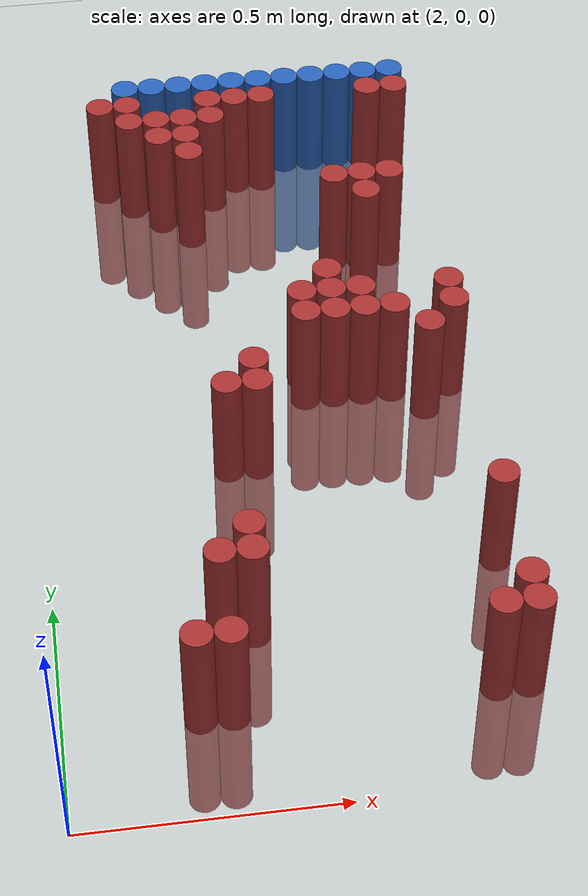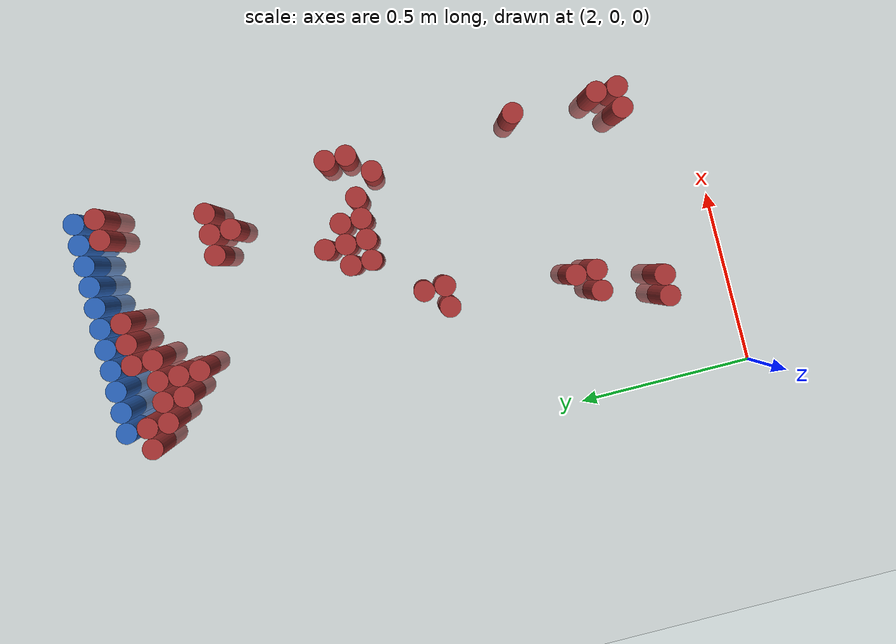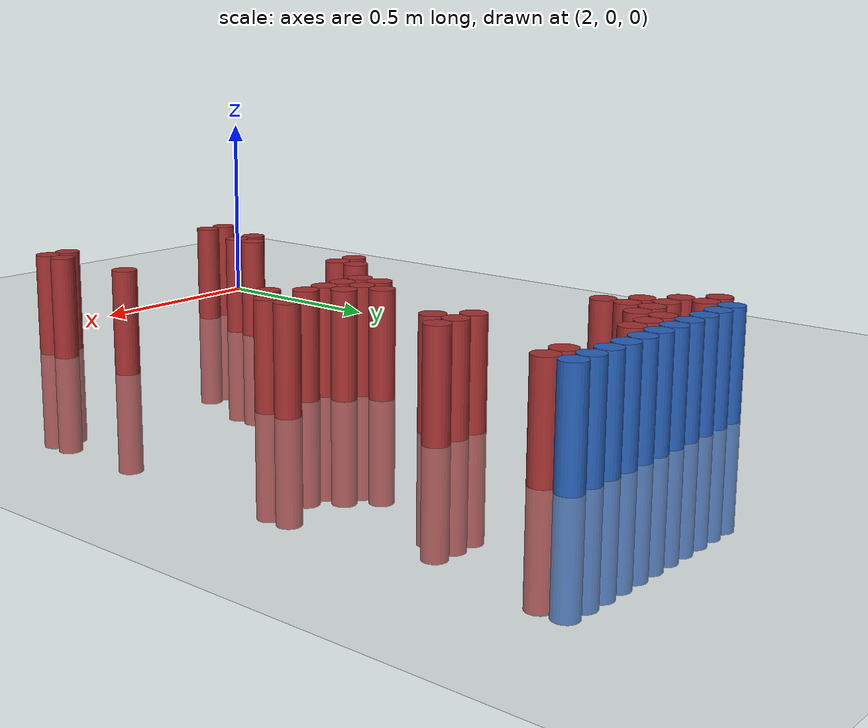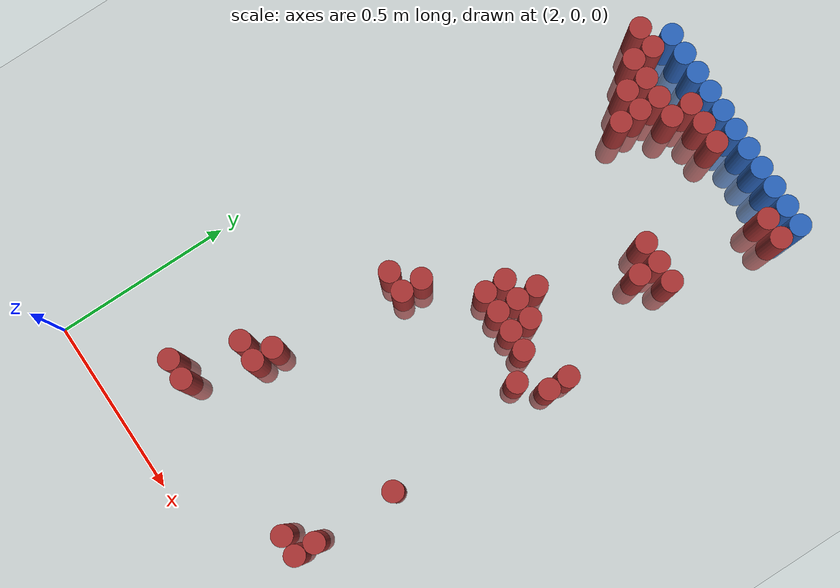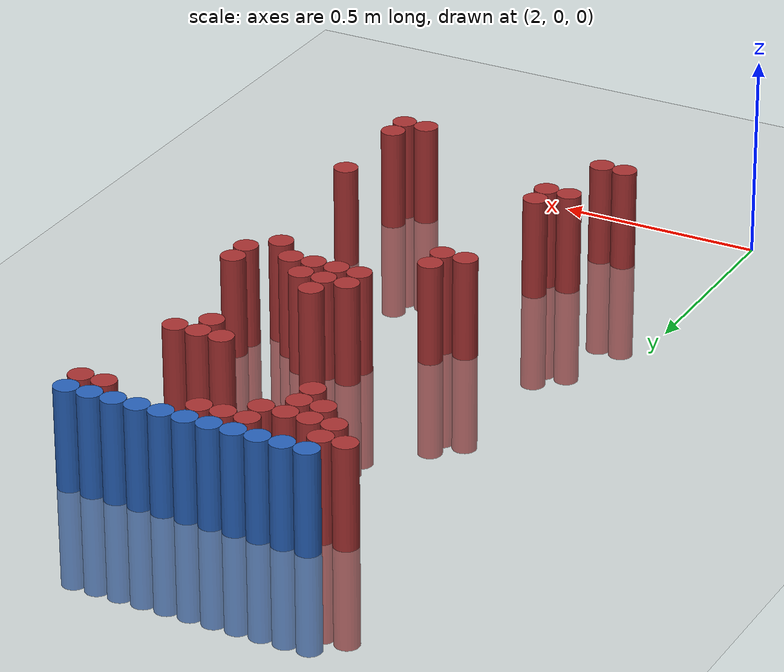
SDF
<sdf version="1.6">
 <world name="default">
  <model name="ground_plane">
   <static>1</static>
   <link name="link">
    <collision name="collision">
     <geometry><plane><normal>0 0 1</normal><size>100 100</size></plane></geometry>
     <surface><friction><ode><mu>100</mu><mu2>50</mu2></ode></friction></surface>
    </collision>
    <visual name="visual">
     <cast_shadows>0</cast_shadows>
     <geometry><plane><normal>0 0 1</normal><size>100 100</size></plane></geometry>
     <material>
      <script><uri>file://media/materials/scripts/gazebo.material</uri><name>Gazebo/Grey</name></script>
     </material>
    </visual>
   </link>
  </model>
  <model name="unit_cylinder_98">
   <static>1</static>
   <pose>2.250000 1.770000 0.000000 0.000000 0.000000 0.000000</pose>
   <link name="link">
    <inertial>
     <mass>1</mass>
     <inertia><ixx>0.145833</ixx><ixy>0</ixy><ixz>0</ixz><iyy>0.145833</iyy><iyz>0</iyz><izz>0.125</izz></inertia>
    </inertial>
    <collision name="collision">
     <geometry><cylinder><radius>0.030000</radius><length>0.5</length></cylinder></geometry>
    </collision>
    <visual name="visual">
     <geometry><cylinder><radius>0.030000</radius><length>0.5</length></cylinder></geometry>
     <material>
      <ambient>0.152000 0.379000 0.720000 1</ambient>
      <diffuse>0.152000 0.379000 0.720000 1</diffuse>
     </material>
     <material>
      <script><name>Gazebo/Grey</name><uri>file://media/materials/scripts/gazebo.material</uri></script>
     </material>
    </visual>
   </link>
  </model>
  <model name="unit_cylinder_99">
   <static>1</static>
   <pose>2.310000 1.770000 0.000000 0.000000 0.000000 0.000000</pose>
   <link name="link">
    <inertial>
     <mass>1</mass>
     <inertia><ixx>0.145833</ixx><ixy>0</ixy><ixz>0</ixz><iyy>0.145833</iyy><iyz>0</iyz><izz>0.125</izz></inertia>
    </inertial>
    <collision name="collision">
     <geometry><cylinder><radius>0.030000</radius><length>0.5</length></cylinder></geometry>
    </collision>
    <visual name="visual">
     <geometry><cylinder><radius>0.030000</radius><length>0.5</length></cylinder></geometry>
     <material>
      <ambient>0.152000 0.379000 0.720000 1</ambient>
      <diffuse>0.152000 0.379000 0.720000 1</diffuse>
     </material>
     <material>
      <script><name>Gazebo/Grey</name><uri>file://media/materials/scripts/gazebo.material</uri></script>
     </material>
    </visual>
   </link>
  </model>
  <model name="unit_cylinder_100">
   <static>1</static>
   <pose>2.370000 1.770000 0.000000 0.000000 0.000000 0.000000</pose>
   <link name="link">
    <inertial>
     <mass>1</mass>
     <inertia><ixx>0.145833</ixx><ixy>0</ixy><ixz>0</ixz><iyy>0.145833</iyy><iyz>0</iyz><izz>0.125</izz></inertia>
    </inertial>
    <collision name="collision">
     <geometry><cylinder><radius>0.030000</radius><length>0.5</length></cylinder></geometry>
    </collision>
    <visual name="visual">
     <geometry><cylinder><radius>0.030000</radius><length>0.5</length></cylinder></geometry>
     <material>
      <ambient>0.152000 0.379000 0.720000 1</ambient>
      <diffuse>0.152000 0.379000 0.720000 1</diffuse>
     </material>
     <material>
      <script><name>Gazebo/Grey</name><uri>file://media/materials/scripts/gazebo.material</uri></script>
     </material>
    </visual>
   </link>
  </model>
  <model name="unit_cylinder_101">
   <static>1</static>
   <pose>2.430000 1.770000 0.000000 0.000000 0.000000 0.000000</pose>
   <link name="link">
    <inertial>
     <mass>1</mass>
     <inertia><ixx>0.145833</ixx><ixy>0</ixy><ixz>0</ixz><iyy>0.145833</iyy><iyz>0</iyz><izz>0.125</izz></inertia>
    </inertial>
    <collision name="collision">
     <geometry><cylinder><radius>0.030000</radius><length>0.5</length></cylinder></geometry>
    </collision>
    <visual name="visual">
     <geometry><cylinder><radius>0.030000</radius><length>0.5</length></cylinder></geometry>
     <material>
      <ambient>0.152000 0.379000 0.720000 1</ambient>
      <diffuse>0.152000 0.379000 0.720000 1</diffuse>
     </material>
     <material>
      <script><name>Gazebo/Grey</name><uri>file://media/materials/scripts/gazebo.material</uri></script>
     </material>
    </visual>
   </link>
  </model>
  <model name="unit_cylinder_102">
   <static>1</static>
   <pose>2.490000 1.770000 0.000000 0.000000 0.000000 0.000000</pose>
   <link name="link">
    <inertial>
     <mass>1</mass>
     <inertia><ixx>0.145833</ixx><ixy>0</ixy><ixz>0</ixz><iyy>0.145833</iyy><iyz>0</iyz><izz>0.125</izz></inertia>
    </inertial>
    <collision name="collision">
     <geometry><cylinder><radius>0.030000</radius><length>0.5</length></cylinder></geometry>
    </collision>
    <visual name="visual">
     <geometry><cylinder><radius>0.030000</radius><length>0.5</length></cylinder></geometry>
     <material>
      <ambient>0.152000 0.379000 0.720000 1</ambient>
      <diffuse>0.152000 0.379000 0.720000 1</diffuse>
     </material>
     <material>
      <script><name>Gazebo/Grey</name><uri>file://media/materials/scripts/gazebo.material</uri></script>
     </material>
    </visual>
   </link>
  </model>
  <model name="unit_cylinder_103">
   <static>1</static>
   <pose>2.550000 1.770000 0.000000 0.000000 0.000000 0.000000</pose>
   <link name="link">
    <inertial>
     <mass>1</mass>
     <inertia><ixx>0.145833</ixx><ixy>0</ixy><ixz>0</ixz><iyy>0.145833</iyy><iyz>0</iyz><izz>0.125</izz></inertia>
    </inertial>
    <collision name="collision">
     <geometry><cylinder><radius>0.030000</radius><length>0.5</length></cylinder></geometry>
    </collision>
    <visual name="visual">
     <geometry><cylinder><radius>0.030000</radius><length>0.5</length></cylinder></geometry>
     <material>
      <ambient>0.152000 0.379000 0.720000 1</ambient>
      <diffuse>0.152000 0.379000 0.720000 1</diffuse>
     </material>
     <material>
      <script><name>Gazebo/Grey</name><uri>file://media/materials/scripts/gazebo.material</uri></script>
     </material>
    </visual>
   </link>
  </model>
  <model name="unit_cylinder_104">
   <static>1</static>
   <pose>2.610000 1.770000 0.000000 0.000000 0.000000 0.000000</pose>
   <link name="link">
    <inertial>
     <mass>1</mass>
     <inertia><ixx>0.145833</ixx><ixy>0</ixy><ixz>0</ixz><iyy>0.145833</iyy><iyz>0</iyz><izz>0.125</izz></inertia>
    </inertial>
    <collision name="collision">
     <geometry><cylinder><radius>0.030000</radius><length>0.5</length></cylinder></geometry>
    </collision>
    <visual name="visual">
     <geometry><cylinder><radius>0.030000</radius><length>0.5</length></cylinder></geometry>
     <material>
      <ambient>0.152000 0.379000 0.720000 1</ambient>
      <diffuse>0.152000 0.379000 0.720000 1</diffuse>
     </material>
     <material>
      <script><name>Gazebo/Grey</name><uri>file://media/materials/scripts/gazebo.material</uri></script>
     </material>
    </visual>
   </link>
  </model>
  <model name="unit_cylinder_105">
   <static>1</static>
   <pose>2.670000 1.770000 0.000000 0.000000 0.000000 0.000000</pose>
   <link name="link">
    <inertial>
     <mass>1</mass>
     <inertia><ixx>0.145833</ixx><ixy>0</ixy><ixz>0</ixz><iyy>0.145833</iyy><iyz>0</iyz><izz>0.125</izz></inertia>
    </inertial>
    <collision name="collision">
     <geometry><cylinder><radius>0.030000</radius><length>0.5</length></cylinder></geometry>
    </collision>
    <visual name="visual">
     <geometry><cylinder><radius>0.030000</radius><length>0.5</length></cylinder></geometry>
     <material>
      <ambient>0.152000 0.379000 0.720000 1</ambient>
      <diffuse>0.152000 0.379000 0.720000 1</diffuse>
     </material>
     <material>
      <script><name>Gazebo/Grey</name><uri>file://media/materials/scripts/gazebo.material</uri></script>
     </material>
    </visual>
   </link>
  </model>
  <model name="unit_cylinder_106">
   <static>1</static>
   <pose>2.730000 1.770000 0.000000 0.000000 0.000000 0.000000</pose>
   <link name="link">
    <inertial>
     <mass>1</mass>
     <inertia><ixx>0.145833</ixx><ixy>0</ixy><ixz>0</ixz><iyy>0.145833</iyy><iyz>0</iyz><izz>0.125</izz></inertia>
    </inertial>
    <collision name="collision">
     <geometry><cylinder><radius>0.030000</radius><length>0.5</length></cylinder></geometry>
    </collision>
    <visual name="visual">
     <geometry><cylinder><radius>0.030000</radius><length>0.5</length></cylinder></geometry>
     <material>
      <ambient>0.152000 0.379000 0.720000 1</ambient>
      <diffuse>0.152000 0.379000 0.720000 1</diffuse>
     </material>
     <material>
      <script><name>Gazebo/Grey</name><uri>file://media/materials/scripts/gazebo.material</uri></script>
     </material>
    </visual>
   </link>
  </model>
  <model name="unit_cylinder_107">
   <static>1</static>
   <pose>2.790000 1.770000 0.000000 0.000000 0.000000 0.000000</pose>
   <link name="link">
    <inertial>
     <mass>1</mass>
     <inertia><ixx>0.145833</ixx><ixy>0</ixy><ixz>0</ixz><iyy>0.145833</iyy><iyz>0</iyz><izz>0.125</izz></inertia>
    </inertial>
    <collision name="collision">
     <geometry><cylinder><radius>0.030000</radius><length>0.5</length></cylinder></geometry>
    </collision>
    <visual name="visual">
     <geometry><cylinder><radius>0.030000</radius><length>0.5</length></cylinder></geometry>
     <material>
      <ambient>0.152000 0.379000 0.720000 1</ambient>
      <diffuse>0.152000 0.379000 0.720000 1</diffuse>
     </material>
     <material>
      <script><name>Gazebo/Grey</name><uri>file://media/materials/scripts/gazebo.material</uri></script>
     </material>
    </visual>
   </link>
  </model>
  <model name="unit_cylinder_108">
   <static>1</static>
   <pose>2.850000 1.770000 0.000000 0.000000 0.000000 0.000000</pose>
   <link name="link">
    <inertial>
     <mass>1</mass>
     <inertia><ixx>0.145833</ixx><ixy>0</ixy><ixz>0</ixz><iyy>0.145833</iyy><iyz>0</iyz><izz>0.125</izz></inertia>
    </inertial>
    <collision name="collision">
     <geometry><cylinder><radius>0.030000</radius><length>0.5</length></cylinder></geometry>
    </collision>
    <visual name="visual">
     <geometry><cylinder><radius>0.030000</radius><length>0.5</length></cylinder></geometry>
     <material>
      <ambient>0.152000 0.379000 0.720000 1</ambient>
      <diffuse>0.152000 0.379000 0.720000 1</diffuse>
     </material>
     <material>
      <script><name>Gazebo/Grey</name><uri>file://media/materials/scripts/gazebo.material</uri></script>
     </material>
    </visual>
   </link>
  </model>
  <model name="unit_cylinder_127">
   <static>1</static>
   <pose>2.190000 1.710000 0.000000 0.000000 0.000000 0.000000</pose>
   <link name="link">
    <inertial>
     <mass>1</mass>
     <inertia><ixx>0.145833</ixx><ixy>0</ixy><ixz>0</ixz><iyy>0.145833</iyy><iyz>0</iyz><izz>0.125</izz></inertia>
    </inertial>
    <collision name="collision">
     <geometry><cylinder><radius>0.030000</radius><length>0.5</length></cylinder></geometry>
    </collision>
    <visual name="visual">
     <geometry><cylinder><radius>0.030000</radius><length>0.5</length></cylinder></geometry>
     <material>
      <ambient>0.648000 0.192000 0.192000 1</ambient>
      <diffuse>0.648000 0.192000 0.192000 1</diffuse>
     </material>
     <material>
      <script><name>Gazebo/Grey</name><uri>file://media/materials/scripts/gazebo.material</uri></script>
     </material>
    </visual>
   </link>
  </model>
  <model name="unit_cylinder_128">
   <static>1</static>
   <pose>2.250000 1.710000 0.000000 0.000000 0.000000 0.000000</pose>
   <link name="link">
    <inertial>
     <mass>1</mass>
     <inertia><ixx>0.145833</ixx><ixy>0</ixy><ixz>0</ixz><iyy>0.145833</iyy><iyz>0</iyz><izz>0.125</izz></inertia>
    </inertial>
    <collision name="collision">
     <geometry><cylinder><radius>0.030000</radius><length>0.5</length></cylinder></geometry>
    </collision>
    <visual name="visual">
     <geometry><cylinder><radius>0.030000</radius><length>0.5</length></cylinder></geometry>
     <material>
      <ambient>0.648000 0.192000 0.192000 1</ambient>
      <diffuse>0.648000 0.192000 0.192000 1</diffuse>
     </material>
     <material>
      <script><name>Gazebo/Grey</name><uri>file://media/materials/scripts/gazebo.material</uri></script>
     </material>
    </visual>
   </link>
  </model>
  <model name="unit_cylinder_129">
   <static>1</static>
   <pose>2.430000 1.710000 0.000000 0.000000 0.000000 0.000000</pose>
   <link name="link">
    <inertial>
     <mass>1</mass>
     <inertia><ixx>0.145833</ixx><ixy>0</ixy><ixz>0</ixz><iyy>0.145833</iyy><iyz>0</iyz><izz>0.125</izz></inertia>
    </inertial>
    <collision name="collision">
     <geometry><cylinder><radius>0.030000</radius><length>0.5</length></cylinder></geometry>
    </collision>
    <visual name="visual">
     <geometry><cylinder><radius>0.030000</radius><length>0.5</length></cylinder></geometry>
     <material>
      <ambient>0.648000 0.192000 0.192000 1</ambient>
      <diffuse>0.648000 0.192000 0.192000 1</diffuse>
     </material>
     <material>
      <script><name>Gazebo/Grey</name><uri>file://media/materials/scripts/gazebo.material</uri></script>
     </material>
    </visual>
   </link>
  </model>
  <model name="unit_cylinder_130">
   <static>1</static>
   <pose>2.490000 1.710000 0.000000 0.000000 0.000000 0.000000</pose>
   <link name="link">
    <inertial>
     <mass>1</mass>
     <inertia><ixx>0.145833</ixx><ixy>0</ixy><ixz>0</ixz><iyy>0.145833</iyy><iyz>0</iyz><izz>0.125</izz></inertia>
    </inertial>
    <collision name="collision">
     <geometry><cylinder><radius>0.030000</radius><length>0.5</length></cylinder></geometry>
    </collision>
    <visual name="visual">
     <geometry><cylinder><radius>0.030000</radius><length>0.5</length></cylinder></geometry>
     <material>
      <ambient>0.648000 0.192000 0.192000 1</ambient>
      <diffuse>0.648000 0.192000 0.192000 1</diffuse>
     </material>
     <material>
      <script><name>Gazebo/Grey</name><uri>file://media/materials/scripts/gazebo.material</uri></script>
     </material>
    </visual>
   </link>
  </model>
  <model name="unit_cylinder_131">
   <static>1</static>
   <pose>2.550000 1.710000 0.000000 0.000000 0.000000 0.000000</pose>
   <link name="link">
    <inertial>
     <mass>1</mass>
     <inertia><ixx>0.145833</ixx><ixy>0</ixy><ixz>0</ixz><iyy>0.145833</iyy><iyz>0</iyz><izz>0.125</izz></inertia>
    </inertial>
    <collision name="collision">
     <geometry><cylinder><radius>0.030000</radius><length>0.5</length></cylinder></geometry>
    </collision>
    <visual name="visual">
     <geometry><cylinder><radius>0.030000</radius><length>0.5</length></cylinder></geometry>
     <material>
      <ambient>0.648000 0.192000 0.192000 1</ambient>
      <diffuse>0.648000 0.192000 0.192000 1</diffuse>
     </material>
     <material>
      <script><name>Gazebo/Grey</name><uri>file://media/materials/scripts/gazebo.material</uri></script>
     </material>
    </visual>
   </link>
  </model>
  <model name="unit_cylinder_132">
   <static>1</static>
   <pose>2.790000 1.710000 0.000000 0.000000 0.000000 0.000000</pose>
   <link name="link">
    <inertial>
     <mass>1</mass>
     <inertia><ixx>0.145833</ixx><ixy>0</ixy><ixz>0</ixz><iyy>0.145833</iyy><iyz>0</iyz><izz>0.125</izz></inertia>
    </inertial>
    <collision name="collision">
     <geometry><cylinder><radius>0.030000</radius><length>0.5</length></cylinder></geometry>
    </collision>
    <visual name="visual">
     <geometry><cylinder><radius>0.030000</radius><length>0.5</length></cylinder></geometry>
     <material>
      <ambient>0.648000 0.192000 0.192000 1</ambient>
      <diffuse>0.648000 0.192000 0.192000 1</diffuse>
     </material>
     <material>
      <script><name>Gazebo/Grey</name><uri>file://media/materials/scripts/gazebo.material</uri></script>
     </material>
    </visual>
   </link>
  </model>
  <model name="unit_cylinder_133">
   <static>1</static>
   <pose>2.850000 1.710000 0.000000 0.000000 0.000000 0.000000</pose>
   <link name="link">
    <inertial>
     <mass>1</mass>
     <inertia><ixx>0.145833</ixx><ixy>0</ixy><ixz>0</ixz><iyy>0.145833</iyy><iyz>0</iyz><izz>0.125</izz></inertia>
    </inertial>
    <collision name="collision">
     <geometry><cylinder><radius>0.030000</radius><length>0.5</length></cylinder></geometry>
    </collision>
    <visual name="visual">
     <geometry><cylinder><radius>0.030000</radius><length>0.5</length></cylinder></geometry>
     <material>
      <ambient>0.648000 0.192000 0.192000 1</ambient>
      <diffuse>0.648000 0.192000 0.192000 1</diffuse>
     </material>
     <material>
      <script><name>Gazebo/Grey</name><uri>file://media/materials/scripts/gazebo.material</uri></script>
     </material>
    </visual>
   </link>
  </model>
  <model name="unit_cylinder_136">
   <static>1</static>
   <pose>2.250000 1.650000 0.000000 0.000000 0.000000 0.000000</pose>
   <link name="link">
    <inertial>
     <mass>1</mass>
     <inertia><ixx>0.145833</ixx><ixy>0</ixy><ixz>0</ixz><iyy>0.145833</iyy><iyz>0</iyz><izz>0.125</izz></inertia>
    </inertial>
    <collision name="collision">
     <geometry><cylinder><radius>0.030000</radius><length>0.5</length></cylinder></geometry>
    </collision>
    <visual name="visual">
     <geometry><cylinder><radius>0.030000</radius><length>0.5</length></cylinder></geometry>
     <material>
      <ambient>0.648000 0.192000 0.192000 1</ambient>
      <diffuse>0.648000 0.192000 0.192000 1</diffuse>
     </material>
     <material>
      <script><name>Gazebo/Grey</name><uri>file://media/materials/scripts/gazebo.material</uri></script>
     </material>
    </visual>
   </link>
  </model>
  <model name="unit_cylinder_137">
   <static>1</static>
   <pose>2.310000 1.650000 0.000000 0.000000 0.000000 0.000000</pose>
   <link name="link">
    <inertial>
     <mass>1</mass>
     <inertia><ixx>0.145833</ixx><ixy>0</ixy><ixz>0</ixz><iyy>0.145833</iyy><iyz>0</iyz><izz>0.125</izz></inertia>
    </inertial>
    <collision name="collision">
     <geometry><cylinder><radius>0.030000</radius><length>0.5</length></cylinder></geometry>
    </collision>
    <visual name="visual">
     <geometry><cylinder><radius>0.030000</radius><length>0.5</length></cylinder></geometry>
     <material>
      <ambient>0.648000 0.192000 0.192000 1</ambient>
      <diffuse>0.648000 0.192000 0.192000 1</diffuse>
     </material>
     <material>
      <script><name>Gazebo/Grey</name><uri>file://media/materials/scripts/gazebo.material</uri></script>
     </material>
    </visual>
   </link>
  </model>
  <model name="unit_cylinder_138">
   <static>1</static>
   <pose>2.370000 1.650000 0.000000 0.000000 0.000000 0.000000</pose>
   <link name="link">
    <inertial>
     <mass>1</mass>
     <inertia><ixx>0.145833</ixx><ixy>0</ixy><ixz>0</ixz><iyy>0.145833</iyy><iyz>0</iyz><izz>0.125</izz></inertia>
    </inertial>
    <collision name="collision">
     <geometry><cylinder><radius>0.030000</radius><length>0.5</length></cylinder></geometry>
    </collision>
    <visual name="visual">
     <geometry><cylinder><radius>0.030000</radius><length>0.5</length></cylinder></geometry>
     <material>
      <ambient>0.648000 0.192000 0.192000 1</ambient>
      <diffuse>0.648000 0.192000 0.192000 1</diffuse>
     </material>
     <material>
      <script><name>Gazebo/Grey</name><uri>file://media/materials/scripts/gazebo.material</uri></script>
     </material>
    </visual>
   </link>
  </model>
  <model name="unit_cylinder_139">
   <static>1</static>
   <pose>2.430000 1.650000 0.000000 0.000000 0.000000 0.000000</pose>
   <link name="link">
    <inertial>
     <mass>1</mass>
     <inertia><ixx>0.145833</ixx><ixy>0</ixy><ixz>0</ixz><iyy>0.145833</iyy><iyz>0</iyz><izz>0.125</izz></inertia>
    </inertial>
    <collision name="collision">
     <geometry><cylinder><radius>0.030000</radius><length>0.5</length></cylinder></geometry>
    </collision>
    <visual name="visual">
     <geometry><cylinder><radius>0.030000</radius><length>0.5</length></cylinder></geometry>
     <material>
      <ambient>0.648000 0.192000 0.192000 1</ambient>
      <diffuse>0.648000 0.192000 0.192000 1</diffuse>
     </material>
     <material>
      <script><name>Gazebo/Grey</name><uri>file://media/materials/scripts/gazebo.material</uri></script>
     </material>
    </visual>
   </link>
  </model>
  <model name="unit_cylinder_140">
   <static>1</static>
   <pose>2.310000 1.590000 0.000000 0.000000 0.000000 0.000000</pose>
   <link name="link">
    <inertial>
     <mass>1</mass>
     <inertia><ixx>0.145833</ixx><ixy>0</ixy><ixz>0</ixz><iyy>0.145833</iyy><iyz>0</iyz><izz>0.125</izz></inertia>
    </inertial>
    <collision name="collision">
     <geometry><cylinder><radius>0.030000</radius><length>0.5</length></cylinder></geometry>
    </collision>
    <visual name="visual">
     <geometry><cylinder><radius>0.030000</radius><length>0.5</length></cylinder></geometry>
     <material>
      <ambient>0.648000 0.192000 0.192000 1</ambient>
      <diffuse>0.648000 0.192000 0.192000 1</diffuse>
     </material>
     <material>
      <script><name>Gazebo/Grey</name><uri>file://media/materials/scripts/gazebo.material</uri></script>
     </material>
    </visual>
   </link>
  </model>
  <model name="unit_cylinder_141">
   <static>1</static>
   <pose>2.370000 1.590000 0.000000 0.000000 0.000000 0.000000</pose>
   <link name="link">
    <inertial>
     <mass>1</mass>
     <inertia><ixx>0.145833</ixx><ixy>0</ixy><ixz>0</ixz><iyy>0.145833</iyy><iyz>0</iyz><izz>0.125</izz></inertia>
    </inertial>
    <collision name="collision">
     <geometry><cylinder><radius>0.030000</radius><length>0.5</length></cylinder></geometry>
    </collision>
    <visual name="visual">
     <geometry><cylinder><radius>0.030000</radius><length>0.5</length></cylinder></geometry>
     <material>
      <ambient>0.648000 0.192000 0.192000 1</ambient>
      <diffuse>0.648000 0.192000 0.192000 1</diffuse>
     </material>
     <material>
      <script><name>Gazebo/Grey</name><uri>file://media/materials/scripts/gazebo.material</uri></script>
     </material>
    </visual>
   </link>
  </model>
  <model name="unit_cylinder_144">
   <static>1</static>
   <pose>2.370000 1.530000 0.000000 0.000000 0.000000 0.000000</pose>
   <link name="link">
    <inertial>
     <mass>1</mass>
     <inertia><ixx>0.145833</ixx><ixy>0</ixy><ixz>0</ixz><iyy>0.145833</iyy><iyz>0</iyz><izz>0.125</izz></inertia>
    </inertial>
    <collision name="collision">
     <geometry><cylinder><radius>0.030000</radius><length>0.5</length></cylinder></geometry>
    </collision>
    <visual name="visual">
     <geometry><cylinder><radius>0.030000</radius><length>0.5</length></cylinder></geometry>
     <material>
      <ambient>0.648000 0.192000 0.192000 1</ambient>
      <diffuse>0.648000 0.192000 0.192000 1</diffuse>
     </material>
     <material>
      <script><name>Gazebo/Grey</name><uri>file://media/materials/scripts/gazebo.material</uri></script>
     </material>
    </visual>
   </link>
  </model>
  <model name="unit_cylinder_149">
   <static>1</static>
   <pose>2.670000 1.410000 0.000000 0.000000 0.000000 0.000000</pose>
   <link name="link">
    <inertial>
     <mass>1</mass>
     <inertia><ixx>0.145833</ixx><ixy>0</ixy><ixz>0</ixz><iyy>0.145833</iyy><iyz>0</iyz><izz>0.125</izz></inertia>
    </inertial>
    <collision name="collision">
     <geometry><cylinder><radius>0.030000</radius><length>0.5</length></cylinder></geometry>
    </collision>
    <visual name="visual">
     <geometry><cylinder><radius>0.030000</radius><length>0.5</length></cylinder></geometry>
     <material>
      <ambient>0.648000 0.192000 0.192000 1</ambient>
      <diffuse>0.648000 0.192000 0.192000 1</diffuse>
     </material>
     <material>
      <script><name>Gazebo/Grey</name><uri>file://media/materials/scripts/gazebo.material</uri></script>
     </material>
    </visual>
   </link>
  </model>
  <model name="unit_cylinder_150">
   <static>1</static>
   <pose>2.730000 1.410000 0.000000 0.000000 0.000000 0.000000</pose>
   <link name="link">
    <inertial>
     <mass>1</mass>
     <inertia><ixx>0.145833</ixx><ixy>0</ixy><ixz>0</ixz><iyy>0.145833</iyy><iyz>0</iyz><izz>0.125</izz></inertia>
    </inertial>
    <collision name="collision">
     <geometry><cylinder><radius>0.030000</radius><length>0.5</length></cylinder></geometry>
    </collision>
    <visual name="visual">
     <geometry><cylinder><radius>0.030000</radius><length>0.5</length></cylinder></geometry>
     <material>
      <ambient>0.648000 0.192000 0.192000 1</ambient>
      <diffuse>0.648000 0.192000 0.192000 1</diffuse>
     </material>
     <material>
      <script><name>Gazebo/Grey</name><uri>file://media/materials/scripts/gazebo.material</uri></script>
     </material>
    </visual>
   </link>
  </model>
  <model name="unit_cylinder_151">
   <static>1</static>
   <pose>2.790000 1.410000 0.000000 0.000000 0.000000 0.000000</pose>
   <link name="link">
    <inertial>
     <mass>1</mass>
     <inertia><ixx>0.145833</ixx><ixy>0</ixy><ixz>0</ixz><iyy>0.145833</iyy><iyz>0</iyz><izz>0.125</izz></inertia>
    </inertial>
    <collision name="collision">
     <geometry><cylinder><radius>0.030000</radius><length>0.5</length></cylinder></geometry>
    </collision>
    <visual name="visual">
     <geometry><cylinder><radius>0.030000</radius><length>0.5</length></cylinder></geometry>
     <material>
      <ambient>0.648000 0.192000 0.192000 1</ambient>
      <diffuse>0.648000 0.192000 0.192000 1</diffuse>
     </material>
     <material>
      <script><name>Gazebo/Grey</name><uri>file://media/materials/scripts/gazebo.material</uri></script>
     </material>
    </visual>
   </link>
  </model>
  <model name="unit_cylinder_152">
   <static>1</static>
   <pose>2.730000 1.350000 0.000000 0.000000 0.000000 0.000000</pose>
   <link name="link">
    <inertial>
     <mass>1</mass>
     <inertia><ixx>0.145833</ixx><ixy>0</ixy><ixz>0</ixz><iyy>0.145833</iyy><iyz>0</iyz><izz>0.125</izz></inertia>
    </inertial>
    <collision name="collision">
     <geometry><cylinder><radius>0.030000</radius><length>0.5</length></cylinder></geometry>
    </collision>
    <visual name="visual">
     <geometry><cylinder><radius>0.030000</radius><length>0.5</length></cylinder></geometry>
     <material>
      <ambient>0.648000 0.192000 0.192000 1</ambient>
      <diffuse>0.648000 0.192000 0.192000 1</diffuse>
     </material>
     <material>
      <script><name>Gazebo/Grey</name><uri>file://media/materials/scripts/gazebo.material</uri></script>
     </material>
    </visual>
   </link>
  </model>
  <model name="unit_cylinder_156">
   <static>1</static>
   <pose>2.610000 1.110000 0.000000 0.000000 0.000000 0.000000</pose>
   <link name="link">
    <inertial>
     <mass>1</mass>
     <inertia><ixx>0.145833</ixx><ixy>0</ixy><ixz>0</ixz><iyy>0.145833</iyy><iyz>0</iyz><izz>0.125</izz></inertia>
    </inertial>
    <collision name="collision">
     <geometry><cylinder><radius>0.030000</radius><length>0.5</length></cylinder></geometry>
    </collision>
    <visual name="visual">
     <geometry><cylinder><radius>0.030000</radius><length>0.5</length></cylinder></geometry>
     <material>
      <ambient>0.648000 0.192000 0.192000 1</ambient>
      <diffuse>0.648000 0.192000 0.192000 1</diffuse>
     </material>
     <material>
      <script><name>Gazebo/Grey</name><uri>file://media/materials/scripts/gazebo.material</uri></script>
     </material>
    </visual>
   </link>
  </model>
  <model name="unit_cylinder_160">
   <static>1</static>
   <pose>2.550000 1.050000 0.000000 0.000000 0.000000 0.000000</pose>
   <link name="link">
    <inertial>
     <mass>1</mass>
     <inertia><ixx>0.145833</ixx><ixy>0</ixy><ixz>0</ixz><iyy>0.145833</iyy><iyz>0</iyz><izz>0.125</izz></inertia>
    </inertial>
    <collision name="collision">
     <geometry><cylinder><radius>0.030000</radius><length>0.5</length></cylinder></geometry>
    </collision>
    <visual name="visual">
     <geometry><cylinder><radius>0.030000</radius><length>0.5</length></cylinder></geometry>
     <material>
      <ambient>0.648000 0.192000 0.192000 1</ambient>
      <diffuse>0.648000 0.192000 0.192000 1</diffuse>
     </material>
     <material>
      <script><name>Gazebo/Grey</name><uri>file://media/materials/scripts/gazebo.material</uri></script>
     </material>
    </visual>
   </link>
  </model>
  <model name="unit_cylinder_161">
   <static>1</static>
   <pose>2.610000 1.050000 0.000000 0.000000 0.000000 0.000000</pose>
   <link name="link">
    <inertial>
     <mass>1</mass>
     <inertia><ixx>0.145833</ixx><ixy>0</ixy><ixz>0</ixz><iyy>0.145833</iyy><iyz>0</iyz><izz>0.125</izz></inertia>
    </inertial>
    <collision name="collision">
     <geometry><cylinder><radius>0.030000</radius><length>0.5</length></cylinder></geometry>
    </collision>
    <visual name="visual">
     <geometry><cylinder><radius>0.030000</radius><length>0.5</length></cylinder></geometry>
     <material>
      <ambient>0.648000 0.192000 0.192000 1</ambient>
      <diffuse>0.648000 0.192000 0.192000 1</diffuse>
     </material>
     <material>
      <script><name>Gazebo/Grey</name><uri>file://media/materials/scripts/gazebo.material</uri></script>
     </material>
    </visual>
   </link>
  </model>
  <model name="unit_cylinder_162">
   <static>1</static>
   <pose>2.670000 1.050000 0.000000 0.000000 0.000000 0.000000</pose>
   <link name="link">
    <inertial>
     <mass>1</mass>
     <inertia><ixx>0.145833</ixx><ixy>0</ixy><ixz>0</ixz><iyy>0.145833</iyy><iyz>0</iyz><izz>0.125</izz></inertia>
    </inertial>
    <collision name="collision">
     <geometry><cylinder><radius>0.030000</radius><length>0.5</length></cylinder></geometry>
    </collision>
    <visual name="visual">
     <geometry><cylinder><radius>0.030000</radius><length>0.5</length></cylinder></geometry>
     <material>
      <ambient>0.648000 0.192000 0.192000 1</ambient>
      <diffuse>0.648000 0.192000 0.192000 1</diffuse>
     </material>
     <material>
      <script><name>Gazebo/Grey</name><uri>file://media/materials/scripts/gazebo.material</uri></script>
     </material>
    </visual>
   </link>
  </model>
  <model name="unit_cylinder_163">
   <static>1</static>
   <pose>2.850000 1.050000 0.000000 0.000000 0.000000 0.000000</pose>
   <link name="link">
    <inertial>
     <mass>1</mass>
     <inertia><ixx>0.145833</ixx><ixy>0</ixy><ixz>0</ixz><iyy>0.145833</iyy><iyz>0</iyz><izz>0.125</izz></inertia>
    </inertial>
    <collision name="collision">
     <geometry><cylinder><radius>0.030000</radius><length>0.5</length></cylinder></geometry>
    </collision>
    <visual name="visual">
     <geometry><cylinder><radius>0.030000</radius><length>0.5</length></cylinder></geometry>
     <material>
      <ambient>0.648000 0.192000 0.192000 1</ambient>
      <diffuse>0.648000 0.192000 0.192000 1</diffuse>
     </material>
     <material>
      <script><name>Gazebo/Grey</name><uri>file://media/materials/scripts/gazebo.material</uri></script>
     </material>
    </visual>
   </link>
  </model>
  <model name="unit_cylinder_166">
   <static>1</static>
   <pose>2.550000 0.990000 0.000000 0.000000 0.000000 0.000000</pose>
   <link name="link">
    <inertial>
     <mass>1</mass>
     <inertia><ixx>0.145833</ixx><ixy>0</ixy><ixz>0</ixz><iyy>0.145833</iyy><iyz>0</iyz><izz>0.125</izz></inertia>
    </inertial>
    <collision name="collision">
     <geometry><cylinder><radius>0.030000</radius><length>0.5</length></cylinder></geometry>
    </collision>
    <visual name="visual">
     <geometry><cylinder><radius>0.030000</radius><length>0.5</length></cylinder></geometry>
     <material>
      <ambient>0.648000 0.192000 0.192000 1</ambient>
      <diffuse>0.648000 0.192000 0.192000 1</diffuse>
     </material>
     <material>
      <script><name>Gazebo/Grey</name><uri>file://media/materials/scripts/gazebo.material</uri></script>
     </material>
    </visual>
   </link>
  </model>
  <model name="unit_cylinder_167">
   <static>1</static>
   <pose>2.610000 0.990000 0.000000 0.000000 0.000000 0.000000</pose>
   <link name="link">
    <inertial>
     <mass>1</mass>
     <inertia><ixx>0.145833</ixx><ixy>0</ixy><ixz>0</ixz><iyy>0.145833</iyy><iyz>0</iyz><izz>0.125</izz></inertia>
    </inertial>
    <collision name="collision">
     <geometry><cylinder><radius>0.030000</radius><length>0.5</length></cylinder></geometry>
    </collision>
    <visual name="visual">
     <geometry><cylinder><radius>0.030000</radius><length>0.5</length></cylinder></geometry>
     <material>
      <ambient>0.648000 0.192000 0.192000 1</ambient>
      <diffuse>0.648000 0.192000 0.192000 1</diffuse>
     </material>
     <material>
      <script><name>Gazebo/Grey</name><uri>file://media/materials/scripts/gazebo.material</uri></script>
     </material>
    </visual>
   </link>
  </model>
  <model name="unit_cylinder_168">
   <static>1</static>
   <pose>2.670000 0.990000 0.000000 0.000000 0.000000 0.000000</pose>
   <link name="link">
    <inertial>
     <mass>1</mass>
     <inertia><ixx>0.145833</ixx><ixy>0</ixy><ixz>0</ixz><iyy>0.145833</iyy><iyz>0</iyz><izz>0.125</izz></inertia>
    </inertial>
    <collision name="collision">
     <geometry><cylinder><radius>0.030000</radius><length>0.5</length></cylinder></geometry>
    </collision>
    <visual name="visual">
     <geometry><cylinder><radius>0.030000</radius><length>0.5</length></cylinder></geometry>
     <material>
      <ambient>0.648000 0.192000 0.192000 1</ambient>
      <diffuse>0.648000 0.192000 0.192000 1</diffuse>
     </material>
     <material>
      <script><name>Gazebo/Grey</name><uri>file://media/materials/scripts/gazebo.material</uri></script>
     </material>
    </visual>
   </link>
  </model>
  <model name="unit_cylinder_169">
   <static>1</static>
   <pose>2.730000 0.990000 0.000000 0.000000 0.000000 0.000000</pose>
   <link name="link">
    <inertial>
     <mass>1</mass>
     <inertia><ixx>0.145833</ixx><ixy>0</ixy><ixz>0</ixz><iyy>0.145833</iyy><iyz>0</iyz><izz>0.125</izz></inertia>
    </inertial>
    <collision name="collision">
     <geometry><cylinder><radius>0.030000</radius><length>0.5</length></cylinder></geometry>
    </collision>
    <visual name="visual">
     <geometry><cylinder><radius>0.030000</radius><length>0.5</length></cylinder></geometry>
     <material>
      <ambient>0.648000 0.192000 0.192000 1</ambient>
      <diffuse>0.648000 0.192000 0.192000 1</diffuse>
     </material>
     <material>
      <script><name>Gazebo/Grey</name><uri>file://media/materials/scripts/gazebo.material</uri></script>
     </material>
    </visual>
   </link>
  </model>
  <model name="unit_cylinder_170">
   <static>1</static>
   <pose>2.850000 0.990000 0.000000 0.000000 0.000000 0.000000</pose>
   <link name="link">
    <inertial>
     <mass>1</mass>
     <inertia><ixx>0.145833</ixx><ixy>0</ixy><ixz>0</ixz><iyy>0.145833</iyy><iyz>0</iyz><izz>0.125</izz></inertia>
    </inertial>
    <collision name="collision">
     <geometry><cylinder><radius>0.030000</radius><length>0.5</length></cylinder></geometry>
    </collision>
    <visual name="visual">
     <geometry><cylinder><radius>0.030000</radius><length>0.5</length></cylinder></geometry>
     <material>
      <ambient>0.648000 0.192000 0.192000 1</ambient>
      <diffuse>0.648000 0.192000 0.192000 1</diffuse>
     </material>
     <material>
      <script><name>Gazebo/Grey</name><uri>file://media/materials/scripts/gazebo.material</uri></script>
     </material>
    </visual>
   </link>
  </model>
  <model name="unit_cylinder_171">
   <static>1</static>
   <pose>2.790000 0.930000 0.000000 0.000000 0.000000 0.000000</pose>
   <link name="link">
    <inertial>
     <mass>1</mass>
     <inertia><ixx>0.145833</ixx><ixy>0</ixy><ixz>0</ixz><iyy>0.145833</iyy><iyz>0</iyz><izz>0.125</izz></inertia>
    </inertial>
    <collision name="collision">
     <geometry><cylinder><radius>0.030000</radius><length>0.5</length></cylinder></geometry>
    </collision>
    <visual name="visual">
     <geometry><cylinder><radius>0.030000</radius><length>0.5</length></cylinder></geometry>
     <material>
      <ambient>0.648000 0.192000 0.192000 1</ambient>
      <diffuse>0.648000 0.192000 0.192000 1</diffuse>
     </material>
     <material>
      <script><name>Gazebo/Grey</name><uri>file://media/materials/scripts/gazebo.material</uri></script>
     </material>
    </visual>
   </link>
  </model>
  <model name="unit_cylinder_172">
   <static>1</static>
   <pose>2.430000 0.870000 0.000000 0.000000 0.000000 0.000000</pose>
   <link name="link">
    <inertial>
     <mass>1</mass>
     <inertia><ixx>0.145833</ixx><ixy>0</ixy><ixz>0</ixz><iyy>0.145833</iyy><iyz>0</iyz><izz>0.125</izz></inertia>
    </inertial>
    <collision name="collision">
     <geometry><cylinder><radius>0.030000</radius><length>0.5</length></cylinder></geometry>
    </collision>
    <visual name="visual">
     <geometry><cylinder><radius>0.030000</radius><length>0.5</length></cylinder></geometry>
     <material>
      <ambient>0.648000 0.192000 0.192000 1</ambient>
      <diffuse>0.648000 0.192000 0.192000 1</diffuse>
     </material>
     <material>
      <script><name>Gazebo/Grey</name><uri>file://media/materials/scripts/gazebo.material</uri></script>
     </material>
    </visual>
   </link>
  </model>
  <model name="unit_cylinder_173">
   <static>1</static>
   <pose>2.370000 0.810000 0.000000 0.000000 0.000000 0.000000</pose>
   <link name="link">
    <inertial>
     <mass>1</mass>
     <inertia><ixx>0.145833</ixx><ixy>0</ixy><ixz>0</ixz><iyy>0.145833</iyy><iyz>0</iyz><izz>0.125</izz></inertia>
    </inertial>
    <collision name="collision">
     <geometry><cylinder><radius>0.030000</radius><length>0.5</length></cylinder></geometry>
    </collision>
    <visual name="visual">
     <geometry><cylinder><radius>0.030000</radius><length>0.5</length></cylinder></geometry>
     <material>
      <ambient>0.648000 0.192000 0.192000 1</ambient>
      <diffuse>0.648000 0.192000 0.192000 1</diffuse>
     </material>
     <material>
      <script><name>Gazebo/Grey</name><uri>file://media/materials/scripts/gazebo.material</uri></script>
     </material>
    </visual>
   </link>
  </model>
  <model name="unit_cylinder_174">
   <static>1</static>
   <pose>2.430000 0.810000 0.000000 0.000000 0.000000 0.000000</pose>
   <link name="link">
    <inertial>
     <mass>1</mass>
     <inertia><ixx>0.145833</ixx><ixy>0</ixy><ixz>0</ixz><iyy>0.145833</iyy><iyz>0</iyz><izz>0.125</izz></inertia>
    </inertial>
    <collision name="collision">
     <geometry><cylinder><radius>0.030000</radius><length>0.5</length></cylinder></geometry>
    </collision>
    <visual name="visual">
     <geometry><cylinder><radius>0.030000</radius><length>0.5</length></cylinder></geometry>
     <material>
      <ambient>0.648000 0.192000 0.192000 1</ambient>
      <diffuse>0.648000 0.192000 0.192000 1</diffuse>
     </material>
     <material>
      <script><name>Gazebo/Grey</name><uri>file://media/materials/scripts/gazebo.material</uri></script>
     </material>
    </visual>
   </link>
  </model>
  <model name="unit_cylinder_181">
   <static>1</static>
   <pose>2.850000 0.510000 0.000000 0.000000 0.000000 0.000000</pose>
   <link name="link">
    <inertial>
     <mass>1</mass>
     <inertia><ixx>0.145833</ixx><ixy>0</ixy><ixz>0</ixz><iyy>0.145833</iyy><iyz>0</iyz><izz>0.125</izz></inertia>
    </inertial>
    <collision name="collision">
     <geometry><cylinder><radius>0.030000</radius><length>0.5</length></cylinder></geometry>
    </collision>
    <visual name="visual">
     <geometry><cylinder><radius>0.030000</radius><length>0.5</length></cylinder></geometry>
     <material>
      <ambient>0.648000 0.192000 0.192000 1</ambient>
      <diffuse>0.648000 0.192000 0.192000 1</diffuse>
     </material>
     <material>
      <script><name>Gazebo/Grey</name><uri>file://media/materials/scripts/gazebo.material</uri></script>
     </material>
    </visual>
   </link>
  </model>
  <model name="unit_cylinder_188">
   <static>1</static>
   <pose>2.370000 0.450000 0.000000 0.000000 0.000000 0.000000</pose>
   <link name="link">
    <inertial>
     <mass>1</mass>
     <inertia><ixx>0.145833</ixx><ixy>0</ixy><ixz>0</ixz><iyy>0.145833</iyy><iyz>0</iyz><izz>0.125</izz></inertia>
    </inertial>
    <collision name="collision">
     <geometry><cylinder><radius>0.030000</radius><length>0.5</length></cylinder></geometry>
    </collision>
    <visual name="visual">
     <geometry><cylinder><radius>0.030000</radius><length>0.5</length></cylinder></geometry>
     <material>
      <ambient>0.648000 0.192000 0.192000 1</ambient>
      <diffuse>0.648000 0.192000 0.192000 1</diffuse>
     </material>
     <material>
      <script><name>Gazebo/Grey</name><uri>file://media/materials/scripts/gazebo.material</uri></script>
     </material>
    </visual>
   </link>
  </model>
  <model name="unit_cylinder_193">
   <static>1</static>
   <pose>2.310000 0.390000 0.000000 0.000000 0.000000 0.000000</pose>
   <link name="link">
    <inertial>
     <mass>1</mass>
     <inertia><ixx>0.145833</ixx><ixy>0</ixy><ixz>0</ixz><iyy>0.145833</iyy><iyz>0</iyz><izz>0.125</izz></inertia>
    </inertial>
    <collision name="collision">
     <geometry><cylinder><radius>0.030000</radius><length>0.5</length></cylinder></geometry>
    </collision>
    <visual name="visual">
     <geometry><cylinder><radius>0.030000</radius><length>0.5</length></cylinder></geometry>
     <material>
      <ambient>0.648000 0.192000 0.192000 1</ambient>
      <diffuse>0.648000 0.192000 0.192000 1</diffuse>
     </material>
     <material>
      <script><name>Gazebo/Grey</name><uri>file://media/materials/scripts/gazebo.material</uri></script>
     </material>
    </visual>
   </link>
  </model>
  <model name="unit_cylinder_194">
   <static>1</static>
   <pose>2.370000 0.390000 0.000000 0.000000 0.000000 0.000000</pose>
   <link name="link">
    <inertial>
     <mass>1</mass>
     <inertia><ixx>0.145833</ixx><ixy>0</ixy><ixz>0</ixz><iyy>0.145833</iyy><iyz>0</iyz><izz>0.125</izz></inertia>
    </inertial>
    <collision name="collision">
     <geometry><cylinder><radius>0.030000</radius><length>0.5</length></cylinder></geometry>
    </collision>
    <visual name="visual">
     <geometry><cylinder><radius>0.030000</radius><length>0.5</length></cylinder></geometry>
     <material>
      <ambient>0.648000 0.192000 0.192000 1</ambient>
      <diffuse>0.648000 0.192000 0.192000 1</diffuse>
     </material>
     <material>
      <script><name>Gazebo/Grey</name><uri>file://media/materials/scripts/gazebo.material</uri></script>
     </material>
    </visual>
   </link>
  </model>
  <model name="unit_cylinder_199">
   <static>1</static>
   <pose>2.850000 0.270000 0.000000 0.000000 0.000000 0.000000</pose>
   <link name="link">
    <inertial>
     <mass>1</mass>
     <inertia><ixx>0.145833</ixx><ixy>0</ixy><ixz>0</ixz><iyy>0.145833</iyy><iyz>0</iyz><izz>0.125</izz></inertia>
    </inertial>
    <collision name="collision">
     <geometry><cylinder><radius>0.030000</radius><length>0.5</length></cylinder></geometry>
    </collision>
    <visual name="visual">
     <geometry><cylinder><radius>0.030000</radius><length>0.5</length></cylinder></geometry>
     <material>
      <ambient>0.648000 0.192000 0.192000 1</ambient>
      <diffuse>0.648000 0.192000 0.192000 1</diffuse>
     </material>
     <material>
      <script><name>Gazebo/Grey</name><uri>file://media/materials/scripts/gazebo.material</uri></script>
     </material>
    </visual>
   </link>
  </model>
  <model name="unit_cylinder_201">
   <static>1</static>
   <pose>2.250000 0.210000 0.000000 0.000000 0.000000 0.000000</pose>
   <link name="link">
    <inertial>
     <mass>1</mass>
     <inertia><ixx>0.145833</ixx><ixy>0</ixy><ixz>0</ixz><iyy>0.145833</iyy><iyz>0</iyz><izz>0.125</izz></inertia>
    </inertial>
    <collision name="collision">
     <geometry><cylinder><radius>0.030000</radius><length>0.5</length></cylinder></geometry>
    </collision>
    <visual name="visual">
     <geometry><cylinder><radius>0.030000</radius><length>0.5</length></cylinder></geometry>
     <material>
      <ambient>0.648000 0.192000 0.192000 1</ambient>
      <diffuse>0.648000 0.192000 0.192000 1</diffuse>
     </material>
     <material>
      <script><name>Gazebo/Grey</name><uri>file://media/materials/scripts/gazebo.material</uri></script>
     </material>
    </visual>
   </link>
  </model>
  <model name="unit_cylinder_202">
   <static>1</static>
   <pose>2.310000 0.210000 0.000000 0.000000 0.000000 0.000000</pose>
   <link name="link">
    <inertial>
     <mass>1</mass>
     <inertia><ixx>0.145833</ixx><ixy>0</ixy><ixz>0</ixz><iyy>0.145833</iyy><iyz>0</iyz><izz>0.125</izz></inertia>
    </inertial>
    <collision name="collision">
     <geometry><cylinder><radius>0.030000</radius><length>0.5</length></cylinder></geometry>
    </collision>
    <visual name="visual">
     <geometry><cylinder><radius>0.030000</radius><length>0.5</length></cylinder></geometry>
     <material>
      <ambient>0.648000 0.192000 0.192000 1</ambient>
      <diffuse>0.648000 0.192000 0.192000 1</diffuse>
     </material>
     <material>
      <script><name>Gazebo/Grey</name><uri>file://media/materials/scripts/gazebo.material</uri></script>
     </material>
    </visual>
   </link>
  </model>
  <model name="unit_cylinder_203">
   <static>1</static>
   <pose>2.790000 0.210000 0.000000 0.000000 0.000000 0.000000</pose>
   <link name="link">
    <inertial>
     <mass>1</mass>
     <inertia><ixx>0.145833</ixx><ixy>0</ixy><ixz>0</ixz><iyy>0.145833</iyy><iyz>0</iyz><izz>0.125</izz></inertia>
    </inertial>
    <collision name="collision">
     <geometry><cylinder><radius>0.030000</radius><length>0.5</length></cylinder></geometry>
    </collision>
    <visual name="visual">
     <geometry><cylinder><radius>0.030000</radius><length>0.5</length></cylinder></geometry>
     <material>
      <ambient>0.648000 0.192000 0.192000 1</ambient>
      <diffuse>0.648000 0.192000 0.192000 1</diffuse>
     </material>
     <material>
      <script><name>Gazebo/Grey</name><uri>file://media/materials/scripts/gazebo.material</uri></script>
     </material>
    </visual>
   </link>
  </model>
  <model name="unit_cylinder_204">
   <static>1</static>
   <pose>2.850000 0.210000 0.000000 0.000000 0.000000 0.000000</pose>
   <link name="link">
    <inertial>
     <mass>1</mass>
     <inertia><ixx>0.145833</ixx><ixy>0</ixy><ixz>0</ixz><iyy>0.145833</iyy><iyz>0</iyz><izz>0.125</izz></inertia>
    </inertial>
    <collision name="collision">
     <geometry><cylinder><radius>0.030000</radius><length>0.5</length></cylinder></geometry>
    </collision>
    <visual name="visual">
     <geometry><cylinder><radius>0.030000</radius><length>0.5</length></cylinder></geometry>
     <material>
      <ambient>0.648000 0.192000 0.192000 1</ambient>
      <diffuse>0.648000 0.192000 0.192000 1</diffuse>
     </material>
     <material>
      <script><name>Gazebo/Grey</name><uri>file://media/materials/scripts/gazebo.material</uri></script>
     </material>
    </visual>
   </link>
  </model>
 </world>
</sdf>
